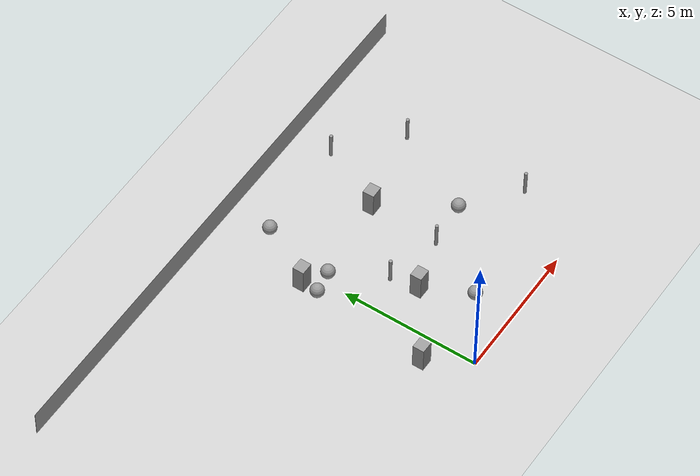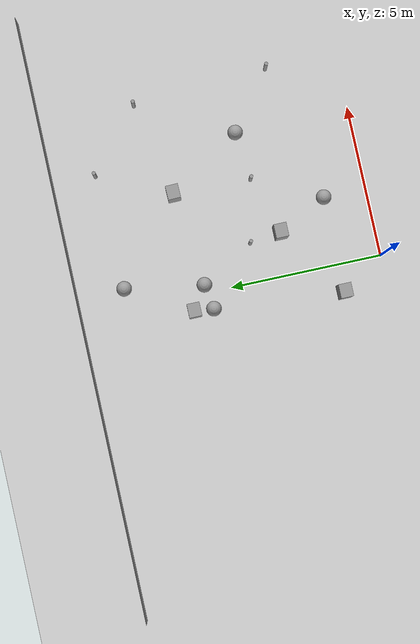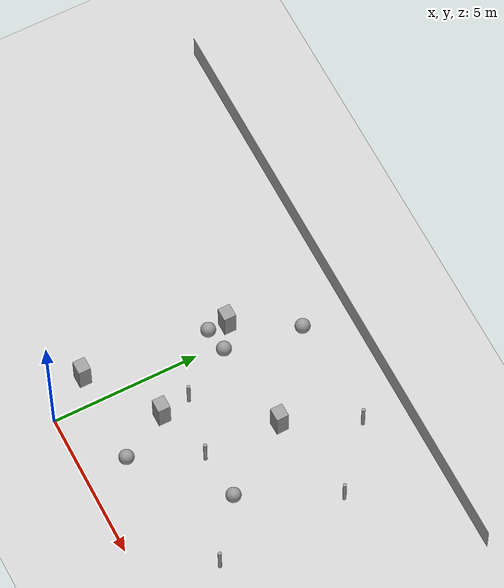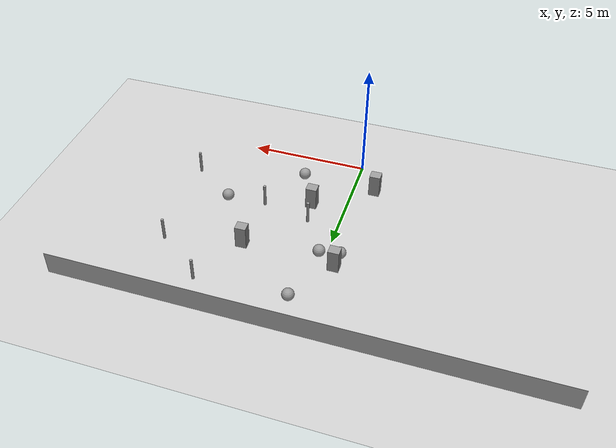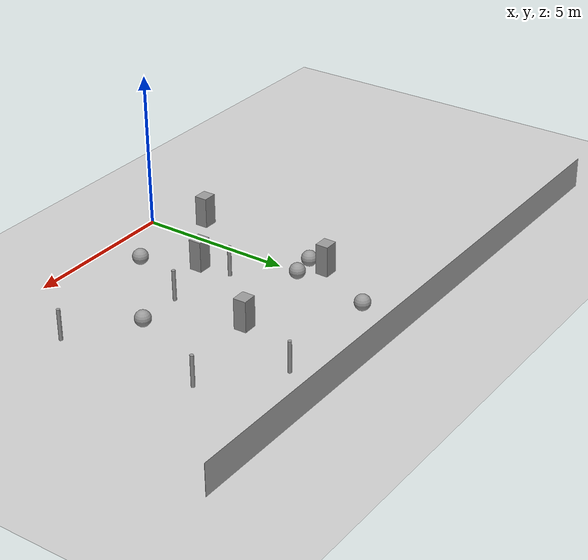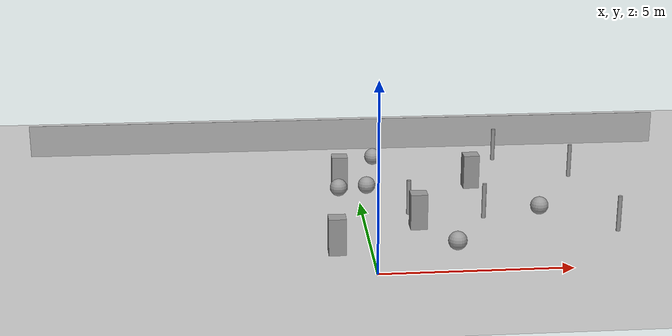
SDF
<sdf version="1.7">
 <world name="default">
  <model name="ground_plane">
   <static>1</static>
   <link name="link">
    <collision name="collision">
     <geometry><plane><normal>0 0 1</normal><size>1 1</size></plane></geometry>
    </collision>
    <visual name="visual">
     <geometry><plane><normal>0 0 1</normal><size>100 100</size></plane></geometry>
     <material>
      <ambient>0.8 0.8 0.8 1</ambient>
      <diffuse>0.8 0.8 0.8 1</diffuse>
      <specular>0.8 0.8 0.8 1</specular>
     </material>
    </visual>
    <inertial>
     <mass>1</mass>
     <inertia><ixx>1</ixx><ixy>0</ixy><ixz>0</ixz><iyy>1</iyy><iyz>0</iyz><izz>1</izz></inertia>
    </inertial>
   </link>
  </model>
  <model name="wall_3">
   <pose>0 10 0.5 0 -0 0</pose>
   <static>1</static>
   <link name="link">
    <collision name="collision"><geometry><box><size>20 0.01 1</size></box></geometry></collision>
    <visual name="visual">
     <geometry><box><size>20 0.01 1</size></box></geometry>
     <material>
      <ambient>0.7 0.7 0.7 1</ambient>
      <diffuse>0.7 0.7 0.7 1</diffuse>
      <specular>0.7 0.7 0.7 1</specular>
     </material>
    </visual>
    <inertial>
     <mass>1</mass>
     <inertia><ixx>1</ixx><ixy>0</ixy><ixz>0</ixz><iyy>1</iyy><iyz>0</iyz><izz>1</izz></inertia>
    </inertial>
   </link>
  </model>
  <model name="unit_box">
   <pose>-0.910709 1.44411 0.499996 -4e-05 -5.2e-05 -6.2e-05</pose>
   <link name="link">
    <inertial>
     <mass>1</mass>
     <inertia>
      <ixx>0.166667</ixx>
      <ixy>0</ixy>
      <ixz>0</ixz>
      <iyy>0.166667</iyy>
      <iyz>0</iyz>
      <izz>0.166667</izz>
     </inertia>
    </inertial>
    <collision name="collision"><geometry><box><size>0.459236 0.414137 1</size></box></geometry></collision>
    <visual name="visual">
     <geometry><box><size>0.459236 0.414137 1</size></box></geometry>
     <material>
      <script><name>Gazebo/Grey</name><uri>file://media/materials/scripts/gazebo.material</uri></script>
     </material>
    </visual>
   </link>
  </model>
  <model name="unit_box_clone">
   <pose>-0.483409 6.34886 0.499971 0.000103 3.2e-05 0.00013</pose>
   <link name="link">
    <inertial>
     <mass>1</mass>
     <inertia>
      <ixx>0.166667</ixx>
      <ixy>0</ixy>
      <ixz>0</ixz>
      <iyy>0.166667</iyy>
      <iyz>0</iyz>
      <izz>0.166667</izz>
     </inertia>
    </inertial>
    <collision name="collision"><geometry><box><size>0.459236 0.414137 1</size></box></geometry></collision>
    <visual name="visual">
     <geometry><box><size>0.459236 0.414137 1</size></box></geometry>
     <material>
      <script><name>Gazebo/Grey</name><uri>file://media/materials/scripts/gazebo.material</uri></script>
     </material>
    </visual>
   </link>
  </model>
  <model name="unit_box_clone_2">
   <pose>1.42791 3.06268 0.499971 0.000103 3.2e-05 0.000135</pose>
   <link name="link">
    <inertial>
     <mass>1</mass>
     <inertia>
      <ixx>0.166667</ixx>
      <ixy>0</ixy>
      <ixz>0</ixz>
      <iyy>0.166667</iyy>
      <iyz>0</iyz>
      <izz>0.166667</izz>
     </inertia>
    </inertial>
    <collision name="collision"><geometry><box><size>0.459236 0.414137 1</size></box></geometry></collision>
    <visual name="visual">
     <geometry><box><size>0.459236 0.414137 1</size></box></geometry>
     <material>
      <script><name>Gazebo/Grey</name><uri>file://media/materials/scripts/gazebo.material</uri></script>
     </material>
    </visual>
   </link>
  </model>
  <model name="unit_box_clone_3">
   <pose>3.39104 6.20706 0.5 0 -0 0.02507</pose>
   <link name="link">
    <inertial>
     <mass>1</mass>
     <inertia>
      <ixx>0.166667</ixx>
      <ixy>0</ixy>
      <ixz>0</ixz>
      <iyy>0.166667</iyy>
      <iyz>0</iyz>
      <izz>0.166667</izz>
     </inertia>
    </inertial>
    <collision name="collision"><geometry><box><size>0.459236 0.414137 1</size></box></geometry></collision>
    <visual name="visual">
     <geometry><box><size>0.459236 0.414137 1</size></box></geometry>
     <material>
      <script><name>Gazebo/Grey</name><uri>file://media/materials/scripts/gazebo.material</uri></script>
     </material>
    </visual>
   </link>
  </model>
  <model name="unit_sphere_clone">
   <pose>2.24987 1.4219 0.25201 0 -0 0</pose>
   <link name="link">
    <inertial>
     <mass>1</mass>
     <inertia><ixx>0.1</ixx><ixy>0</ixy><ixz>0</ixz><iyy>0.1</iyy><iyz>0</iyz><izz>0.1</izz></inertia>
    </inertial>
    <collision name="collision"><geometry><sphere><radius>0.25201</radius></sphere></geometry></collision>
    <visual name="visual">
     <geometry><sphere><radius>0.25201</radius></sphere></geometry>
     <material>
      <script><name>Gazebo/Grey</name><uri>file://media/materials/scripts/gazebo.material</uri></script>
     </material>
    </visual>
   </link>
  </model>
  <model name="unit_sphere_clone_0">
   <pose>0.278128 5.84538 0.25201 0 -0 0</pose>
   <link name="link">
    <inertial>
     <mass>1</mass>
     <inertia><ixx>0.1</ixx><ixy>0</ixy><ixz>0</ixz><iyy>0.1</iyy><iyz>0</iyz><izz>0.1</izz></inertia>
    </inertial>
    <collision name="collision"><geometry><sphere><radius>0.25201</radius></sphere></geometry></collision>
    <visual name="visual">
     <geometry><sphere><radius>0.25201</radius></sphere></geometry>
     <material>
      <script><name>Gazebo/Grey</name><uri>file://media/materials/scripts/gazebo.material</uri></script>
     </material>
    </visual>
   </link>
  </model>
  <model name="unit_sphere_clone_1">
   <pose>-0.550211 5.70816 0.25201 0 -0 0</pose>
   <link name="link">
    <inertial>
     <mass>1</mass>
     <inertia><ixx>0.1</ixx><ixy>0</ixy><ixz>0</ixz><iyy>0.1</iyy><iyz>0</iyz><izz>0.1</izz></inertia>
    </inertial>
    <collision name="collision"><geometry><sphere><radius>0.25201</radius></sphere></geometry></collision>
    <visual name="visual">
     <geometry><sphere><radius>0.25201</radius></sphere></geometry>
     <material>
      <script><name>Gazebo/Grey</name><uri>file://media/materials/scripts/gazebo.material</uri></script>
     </material>
    </visual>
   </link>
  </model>
  <model name="unit_sphere_clone_7">
   <pose>4.94237 3.79322 0.25201 0 -0 0</pose>
   <link name="link">
    <inertial>
     <mass>1</mass>
     <inertia><ixx>0.1</ixx><ixy>0</ixy><ixz>0</ixz><iyy>0.1</iyy><iyz>0</iyz><izz>0.1</izz></inertia>
    </inertial>
    <collision name="collision"><geometry><sphere><radius>0.25201</radius></sphere></geometry></collision>
    <visual name="visual">
     <geometry><sphere><radius>0.25201</radius></sphere></geometry>
     <material>
      <script><name>Gazebo/Grey</name><uri>file://media/materials/scripts/gazebo.material</uri></script>
     </material>
    </visual>
   </link>
  </model>
  <model name="unit_sphere_clone_8">
   <pose>0.709315 8.43307 0.25201 0 -0 0</pose>
   <link name="link">
    <inertial>
     <mass>1</mass>
     <inertia><ixx>0.1</ixx><ixy>0</ixy><ixz>0</ixz><iyy>0.1</iyy><iyz>0</iyz><izz>0.1</izz></inertia>
    </inertial>
    <collision name="collision"><geometry><sphere><radius>0.25201</radius></sphere></geometry></collision>
    <visual name="visual">
     <geometry><sphere><radius>0.25201</radius></sphere></geometry>
     <material>
      <script><name>Gazebo/Grey</name><uri>file://media/materials/scripts/gazebo.material</uri></script>
     </material>
    </visual>
   </link>
  </model>
  <model name="unit_cylinder">
   <pose>4.5207 8.57506 0.499885 2e-06 2.7e-05 -0.004299</pose>
   <link name="link">
    <inertial>
     <mass>1</mass>
     <inertia><ixx>0.145833</ixx><ixy>0</ixy><ixz>0</ixz><iyy>0.145833</iyy><iyz>0</iyz><izz>0.125</izz></inertia>
    </inertial>
    <collision name="collision">
     <geometry><cylinder><radius>0.059141</radius><length>1</length></cylinder></geometry>
    </collision>
    <visual name="visual">
     <geometry><cylinder><radius>0.059141</radius><length>1</length></cylinder></geometry>
     <material>
      <script><name>Gazebo/Grey</name><uri>file://media/materials/scripts/gazebo.material</uri></script>
     </material>
    </visual>
   </link>
  </model>
  <model name="unit_cylinder_clone_2">
   <pose>3.33652 3.6322 0.499885 2e-06 2.7e-05 -0.004164</pose>
   <link name="link">
    <inertial>
     <mass>1</mass>
     <inertia><ixx>0.145833</ixx><ixy>0</ixy><ixz>0</ixz><iyy>0.145833</iyy><iyz>0</iyz><izz>0.125</izz></inertia>
    </inertial>
    <collision name="collision">
     <geometry><cylinder><radius>0.0591411</radius><length>1</length></cylinder></geometry>
    </collision>
    <visual name="visual">
     <geometry><cylinder><radius>0.0591411</radius><length>1</length></cylinder></geometry>
     <material>
      <script><name>Gazebo/Grey</name><uri>file://media/materials/scripts/gazebo.material</uri></script>
     </material>
    </visual>
   </link>
  </model>
  <model name="unit_cylinder_clone_4">
   <pose>1.2913 4.08799 0.499885 2e-06 2.7e-05 -0.003879</pose>
   <link name="link">
    <inertial>
     <mass>1</mass>
     <inertia><ixx>0.145833</ixx><ixy>0</ixy><ixz>0</ixz><iyy>0.145833</iyy><iyz>0</iyz><izz>0.125</izz></inertia>
    </inertial>
    <collision name="collision">
     <geometry><cylinder><radius>0.0591411</radius><length>1</length></cylinder></geometry>
    </collision>
    <visual name="visual">
     <geometry><cylinder><radius>0.0591411</radius><length>1</length></cylinder></geometry>
     <material>
      <script><name>Gazebo/Grey</name><uri>file://media/materials/scripts/gazebo.material</uri></script>
     </material>
    </visual>
   </link>
  </model>
  <model name="unit_cylinder_clone_15">
   <pose>6.80204 2.37358 0.499885 2e-06 2.7e-05 -0.003766</pose>
   <link name="link">
    <inertial>
     <mass>1</mass>
     <inertia><ixx>0.145833</ixx><ixy>0</ixy><ixz>0</ixz><iyy>0.145833</iyy><iyz>0</iyz><izz>0.125</izz></inertia>
    </inertial>
    <collision name="collision">
     <geometry><cylinder><radius>0.0591411</radius><length>1</length></cylinder></geometry>
    </collision>
    <visual name="visual">
     <geometry><cylinder><radius>0.0591411</radius><length>1</length></cylinder></geometry>
     <material>
      <script><name>Gazebo/Grey</name><uri>file://media/materials/scripts/gazebo.material</uri></script>
     </material>
    </visual>
   </link>
  </model>
  <model name="unit_cylinder_clone_16">
   <pose>6.52941 6.85117 0.499885 2e-06 2.7e-05 -0.003708</pose>
   <link name="link">
    <inertial>
     <mass>1</mass>
     <inertia><ixx>0.145833</ixx><ixy>0</ixy><ixz>0</ixz><iyy>0.145833</iyy><iyz>0</iyz><izz>0.125</izz></inertia>
    </inertial>
    <collision name="collision">
     <geometry><cylinder><radius>0.0591411</radius><length>1</length></cylinder></geometry>
    </collision>
    <visual name="visual">
     <geometry><cylinder><radius>0.0591411</radius><length>1</length></cylinder></geometry>
     <material>
      <script><name>Gazebo/Grey</name><uri>file://media/materials/scripts/gazebo.material</uri></script>
     </material>
    </visual>
   </link>
  </model>
 </world>
</sdf>
